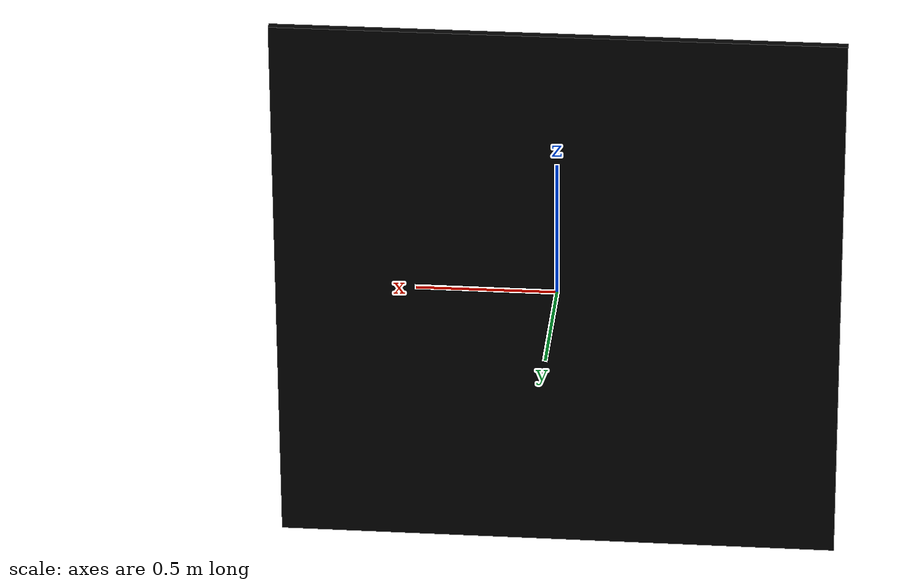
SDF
<?xml version='1.0'?>
<sdf version="1.4">
  <model name="wall">
    <static>true</static>
    <link name="link">
      <inertial>
        <mass>1.0</mass>
        <inertia> <!-- inertias are tricky to compute -->
          <!-- http://gazebosim.org/tutorials?tut=inertia&cat=build_robot -->
          <ixx>0.083</ixx>       <!-- for a box: ixx = 0.083 * mass * (y*y + z*z) -->
          <ixy>0.0</ixy>         <!-- for a box: ixy = 0 -->
          <ixz>0.0</ixz>         <!-- for a box: ixz = 0 -->
          <iyy>0.083</iyy>       <!-- for a box: iyy = 0.083 * mass * (x*x + z*z) -->
          <iyz>0.0</iyz>         <!-- for a box: iyz = 0 -->
          <izz>0.083</izz>       <!-- for a box: izz = 0.083 * mass * (x*x + y*y) -->
        </inertia>
      </inertial>
      <collision name="collision">
        <geometry>
          <box>
            <size> 2 0.03 2</size>
          </box>
        </geometry>
      </collision>
      <visual name="visual">
        <geometry>
          <box>
            <size>2 0.03 2</size>
          </box>
        </geometry>
        <material>
          <ambient>0 0 0 1</ambient>
          <diffuse>0 0 0 1</diffuse>
          <specular>0 0 0 1</specular>
        </material>
      </visual>
    </link>
  </model>
</sdf>
